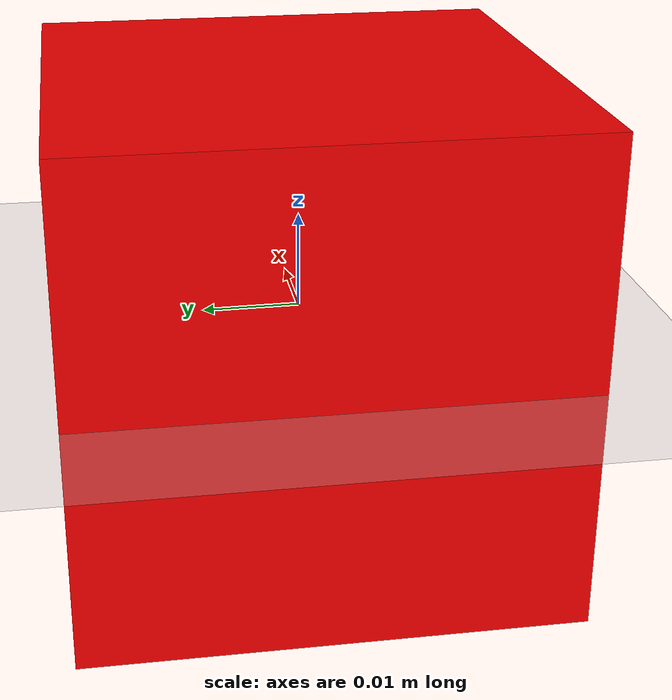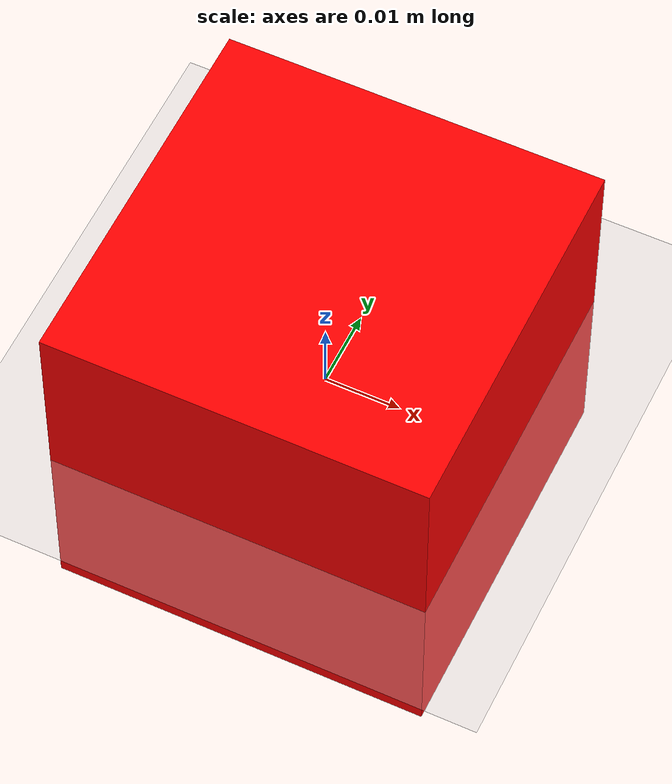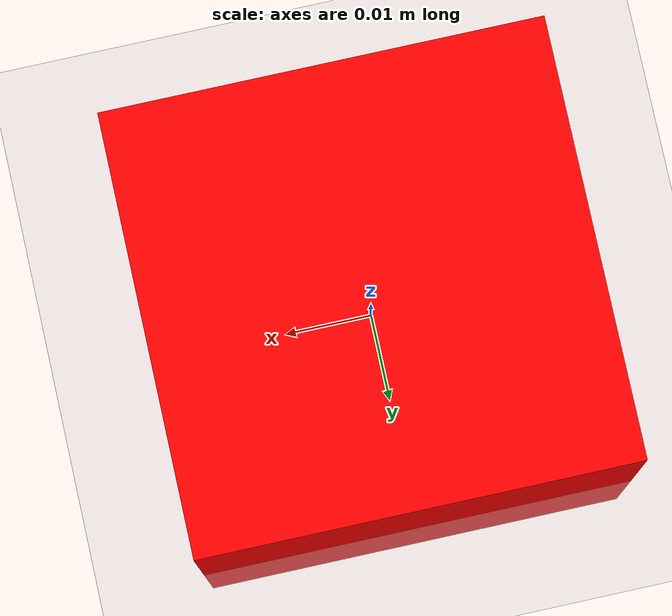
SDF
<?xml version="1.0" ?>
<sdf version="1.6">
  <world name="block_sorting_world">

    <!-- 地面 -->
    <include>
      <uri>model://ground_plane</uri>
    </include>

    <!-- 赤ブロック -->
    <include>
      <uri>model://block_red</uri>
    </include>

    <!-- 青ブロック -->
    <include>
      <uri>model://block_blue</uri>
    </include>

  </world>
</sdf>

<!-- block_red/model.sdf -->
<sdf version="1.9">

    <model name="red_block">
      <static>false</static>
      <link name="link">
        <pose>0 0 0 0 0 0</pose>
        <collision name="collision">
          <geometry>
            <box>
              <size>0.05 0.05 0.05</size>
            </box>
          </geometry>
          <surface>
            <contact>
              <collide_without_contact>false</collide_without_contact>
            </contact>
            <friction>
              <ode>
                <mu>1.0</mu>
                <mu2>1.0</mu2>
              </ode>
            </friction>
          </surface>
        </collision>
        <inertial>
          <mass>0.1</mass>
          <inertia>
            <ixx>8.333e-05</ixx>
            <ixy>0.0</ixy>
            <ixz>0.0</ixz>
            <iyy>8.333e-05</iyy>
            <iyz>0.0</iyz>
            <izz>8.333e-05</izz>
          </inertia>
        </inertial>
        <visual name="visual">
          <geometry>
            <box>
              <size>0.05 0.05 0.05</size>
            </box>
          </geometry>
          <material>
            <ambient>1 0 0 1</ambient>
            <diffuse>1 0 0 1</diffuse>
            <specular>0.1 0.1 0.1 1</specular>
            <emissive>0 0 0 1</emissive>
          </material>
        </visual>
      </link>
    </model>
</sdf>

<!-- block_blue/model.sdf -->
<sdf version="1.9">

    <model name="blue_block">
      <static>false</static>
      <link name="link">
        <pose>0 0 0 0 0 0</pose>
        <collision name="collision">
          <geometry>
            <box>
              <size>0.05 0.05 0.05</size>
            </box>
          </geometry>
          <surface>
            <contact>
              <collide_without_contact>false</collide_without_contact>
            </contact>
            <friction>
              <ode>
                <mu>1.0</mu>
                <mu2>1.0</mu2>
              </ode>
            </friction>
          </surface>
        </collision>
        <inertial>
          <mass>0.005</mass>
          <inertia>
            <ixx>8.333e-05</ixx>
            <ixy>0.0</ixy>
            <ixz>0.0</ixz>
            <iyy>8.333e-05</iyy>
            <iyz>0.0</iyz>
            <izz>8.333e-05</izz>
          </inertia>
        </inertial>
        <visual name="visual">
          <geometry>
            <box>
              <size>0.05 0.05 0.05</size>
            </box>
          </geometry>
          <material>
            <ambient>0 0 1 1</ambient>
            <diffuse>0 0 1 1</diffuse>
            <specular>0.1 0.1 0.1 1</specular>
            <emissive>0 0 0 1</emissive>
          </material>
        </visual>
      </link>
    </model>
</sdf>
